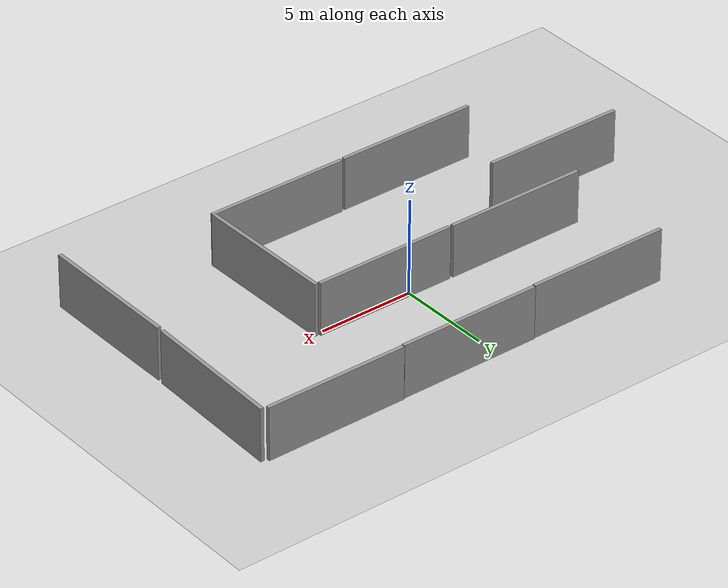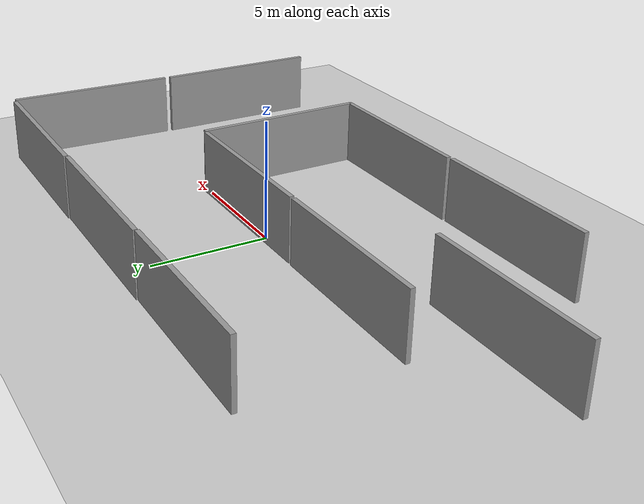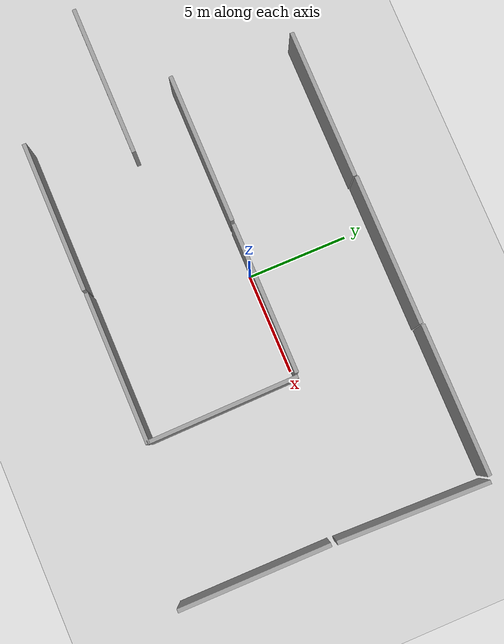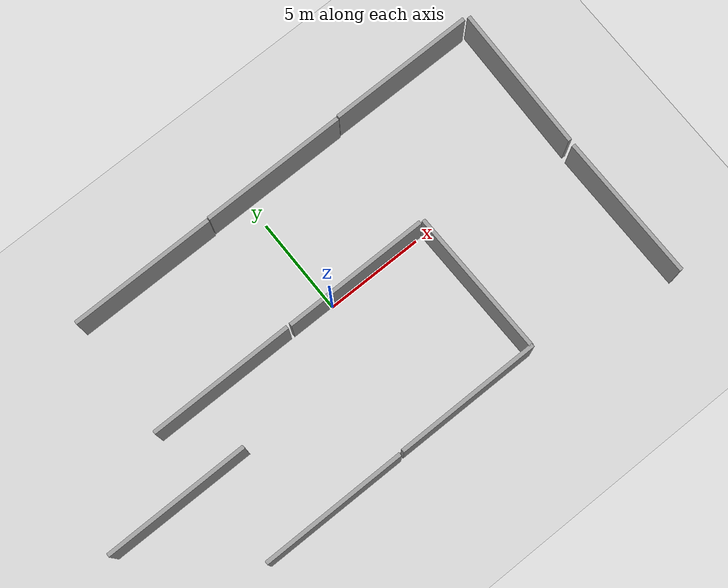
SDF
<sdf version="1.4">
 <world name="default">
  <light name="sun" type="directional">
   <pose>0 0 10 0 -0 0</pose>
   <diffuse>0.8 0.8 0.8 1</diffuse>
   <specular>0.2 0.2 0.2 1</specular>
   <attenuation>
    <range>1000</range>
    <constant>0.9</constant>
    <linear>0.01</linear>
    <quadratic>0.001</quadratic>
   </attenuation>
   <direction>-0.5 0.1 -0.9</direction>
  </light>
  <model name="ground_plane">
   <static>1</static>
   <link name="link">
    <collision name="collision">
     <geometry><plane><normal>0 0 1</normal><size>100 100</size></plane></geometry>
     <surface><friction><ode><mu>100</mu><mu2>50</mu2></ode></friction></surface>
    </collision>
    <visual name="visual">
     <cast_shadows>0</cast_shadows>
     <geometry><plane><normal>0 0 1</normal><size>100 100</size></plane></geometry>
     <material>
      <script><uri>file://media/materials/scripts/gazebo.material</uri><name>Gazebo/Grey</name></script>
     </material>
    </visual>
    <velocity_decay><linear>0</linear><angular>0</angular></velocity_decay>
   </link>
  </model>
  <physics type="ode">
   <max_step_size>0.001</max_step_size>
   <real_time_factor>1</real_time_factor>
   <real_time_update_rate>1000</real_time_update_rate>
   <gravity>0 0 -9.8</gravity>
  </physics>
  <scene><ambient>0.4 0.4 0.4 1</ambient><background>0.7 0.7 0.7 1</background><shadows>1</shadows></scene>
  <spherical_coordinates>
   <surface_model>EARTH_WGS84</surface_model>
   <latitude_deg>0</latitude_deg>
   <longitude_deg>0</longitude_deg>
   <elevation>0</elevation>
   <heading_deg>0</heading_deg>
  </spherical_coordinates>
  <model name="grey_wall">
   <static>1</static>
   <link name="link">
    <pose>0 0 1.4 0 -0 0</pose>
    <collision name="collision"><geometry><box><size>7.5 0.2 2.8</size></box></geometry></collision>
    <visual name="visual">
     <cast_shadows>0</cast_shadows>
     <geometry><box><size>7.5 0.2 2.8</size></box></geometry>
     <material>
      <script>
       <uri>model://grey_wall/materials/scripts</uri>
       <uri>model://grey_wall/materials/textures</uri>
       <name>vrc/grey_wall</name>
      </script>
     </material>
    </visual>
    <velocity_decay><linear>0</linear><angular>0</angular></velocity_decay>
   </link>
   <pose>1.67271 6.27962 0 0 -0 0</pose>
  </model>
  <model name="grey_wall_0">
   <static>1</static>
   <link name="link">
    <pose>0 0 1.4 0 -0 0</pose>
    <collision name="collision"><geometry><box><size>7.5 0.2 2.8</size></box></geometry></collision>
    <visual name="visual">
     <cast_shadows>0</cast_shadows>
     <geometry><box><size>7.5 0.2 2.8</size></box></geometry>
     <material>
      <script>
       <uri>model://grey_wall/materials/scripts</uri>
       <uri>model://grey_wall/materials/textures</uri>
       <name>vrc/grey_wall</name>
      </script>
     </material>
    </visual>
    <velocity_decay><linear>0</linear><angular>0</angular></velocity_decay>
   </link>
   <pose>1.51809 0.119637 0 0 -0 0</pose>
  </model>
  <model name="grey_wall_1">
   <static>1</static>
   <link name="link">
    <pose>0 0 1.4 0 -0 0</pose>
    <collision name="collision"><geometry><box><size>7.5 0.2 2.8</size></box></geometry></collision>
    <visual name="visual">
     <cast_shadows>0</cast_shadows>
     <geometry><box><size>7.5 0.2 2.8</size></box></geometry>
     <material>
      <script>
       <uri>model://grey_wall/materials/scripts</uri>
       <uri>model://grey_wall/materials/textures</uri>
       <name>vrc/grey_wall</name>
      </script>
     </material>
    </visual>
    <velocity_decay><linear>0</linear><angular>0</angular></velocity_decay>
   </link>
   <pose>-5.86954 6.23162 0 0 -0 0</pose>
  </model>
  <model name="grey_wall_2">
   <static>1</static>
   <link name="link">
    <pose>0 0 1.4 0 -0 0</pose>
    <collision name="collision"><geometry><box><size>7.5 0.2 2.8</size></box></geometry></collision>
    <visual name="visual">
     <cast_shadows>0</cast_shadows>
     <geometry><box><size>7.5 0.2 2.8</size></box></geometry>
     <material>
      <script>
       <uri>model://grey_wall/materials/scripts</uri>
       <uri>model://grey_wall/materials/textures</uri>
       <name>vrc/grey_wall</name>
      </script>
     </material>
    </visual>
    <velocity_decay><linear>0</linear><angular>0</angular></velocity_decay>
   </link>
   <pose>-6.13774 0.134157 0 0 -0 0</pose>
  </model>
  <model name="grey_wall_3">
   <static>1</static>
   <link name="link">
    <pose>0 0 1.4 0 -0 0</pose>
    <collision name="collision"><geometry><box><size>7.5 0.2 2.8</size></box></geometry></collision>
    <visual name="visual">
     <cast_shadows>0</cast_shadows>
     <geometry><box><size>7.5 0.2 2.8</size></box></geometry>
     <material>
      <script>
       <uri>model://grey_wall/materials/scripts</uri>
       <uri>model://grey_wall/materials/textures</uri>
       <name>vrc/grey_wall</name>
      </script>
     </material>
    </visual>
    <velocity_decay><linear>0</linear><angular>0</angular></velocity_decay>
   </link>
   <pose>5.48328 -3.64106 0 0 -0 1.58475</pose>
  </model>
  <model name="grey_wall_4">
   <static>1</static>
   <link name="link">
    <pose>0 0 1.4 0 -0 0</pose>
    <collision name="collision"><geometry><box><size>7.5 0.2 2.8</size></box></geometry></collision>
    <visual name="visual">
     <cast_shadows>0</cast_shadows>
     <geometry><box><size>7.5 0.2 2.8</size></box></geometry>
     <material>
      <script>
       <uri>model://grey_wall/materials/scripts</uri>
       <uri>model://grey_wall/materials/textures</uri>
       <name>vrc/grey_wall</name>
      </script>
     </material>
    </visual>
    <velocity_decay><linear>0</linear><angular>0</angular></velocity_decay>
   </link>
   <pose>9.22048 6.3317 0 0 -0 0</pose>
  </model>
  <model name="grey_wall_5">
   <static>1</static>
   <link name="link">
    <pose>0 0 1.4 0 -0 0</pose>
    <collision name="collision"><geometry><box><size>7.5 0.2 2.8</size></box></geometry></collision>
    <visual name="visual">
     <cast_shadows>0</cast_shadows>
     <geometry><box><size>7.5 0.2 2.8</size></box></geometry>
     <material>
      <script>
       <uri>model://grey_wall/materials/scripts</uri>
       <uri>model://grey_wall/materials/textures</uri>
       <name>vrc/grey_wall</name>
      </script>
     </material>
    </visual>
    <velocity_decay><linear>0</linear><angular>0</angular></velocity_decay>
   </link>
   <pose>1.85354 -7.38762 0 0 -0 0</pose>
  </model>
  <model name="grey_wall_6">
   <static>1</static>
   <link name="link">
    <pose>0 0 1.4 0 -0 0</pose>
    <collision name="collision"><geometry><box><size>7.5 0.2 2.8</size></box></geometry></collision>
    <visual name="visual">
     <cast_shadows>0</cast_shadows>
     <geometry><box><size>7.5 0.2 2.8</size></box></geometry>
     <material>
      <script>
       <uri>model://grey_wall/materials/scripts</uri>
       <uri>model://grey_wall/materials/textures</uri>
       <name>vrc/grey_wall</name>
      </script>
     </material>
    </visual>
    <velocity_decay><linear>0</linear><angular>0</angular></velocity_decay>
   </link>
   <pose>12.9789 -5.23837 0 0 -0 1.57086</pose>
  </model>
  <model name="grey_wall_7">
   <static>1</static>
   <link name="link">
    <pose>0 0 1.4 0 -0 0</pose>
    <collision name="collision"><geometry><box><size>7.5 0.2 2.8</size></box></geometry></collision>
    <visual name="visual">
     <cast_shadows>0</cast_shadows>
     <geometry><box><size>7.5 0.2 2.8</size></box></geometry>
     <material>
      <script>
       <uri>model://grey_wall/materials/scripts</uri>
       <uri>model://grey_wall/materials/textures</uri>
       <name>vrc/grey_wall</name>
      </script>
     </material>
    </visual>
    <velocity_decay><linear>0</linear><angular>0</angular></velocity_decay>
   </link>
   <pose>-10.9367 -2.8396 0 0 -0 0</pose>
  </model>
  <model name="grey_wall_8">
   <static>1</static>
   <link name="link">
    <pose>0 0 1.4 0 -0 0</pose>
    <collision name="collision"><geometry><box><size>7.5 0.2 2.8</size></box></geometry></collision>
    <visual name="visual">
     <cast_shadows>0</cast_shadows>
     <geometry><box><size>7.5 0.2 2.8</size></box></geometry>
     <material>
      <script>
       <uri>model://grey_wall/materials/scripts</uri>
       <uri>model://grey_wall/materials/textures</uri>
       <name>vrc/grey_wall</name>
      </script>
     </material>
    </visual>
    <velocity_decay><linear>0</linear><angular>0</angular></velocity_decay>
   </link>
   <pose>-5.80003 -7.42776 0 0 -0 0</pose>
  </model>
  <model name="grey_wall_9">
   <static>1</static>
   <link name="link">
    <pose>0 0 1.4 0 -0 0</pose>
    <collision name="collision"><geometry><box><size>7.5 0.2 2.8</size></box></geometry></collision>
    <visual name="visual">
     <cast_shadows>0</cast_shadows>
     <geometry><box><size>7.5 0.2 2.8</size></box></geometry>
     <material>
      <script>
       <uri>model://grey_wall/materials/scripts</uri>
       <uri>model://grey_wall/materials/textures</uri>
       <name>vrc/grey_wall</name>
      </script>
     </material>
    </visual>
    <velocity_decay><linear>0</linear><angular>0</angular></velocity_decay>
   </link>
   <pose>13.1143 2.52023 0 0 -0 1.5419</pose>
  </model>
 </world>
</sdf>
